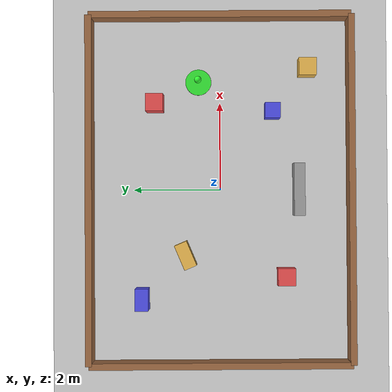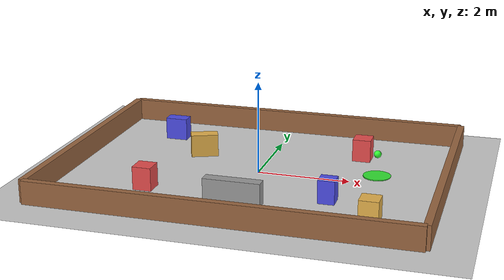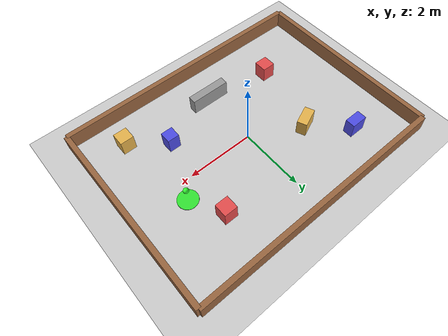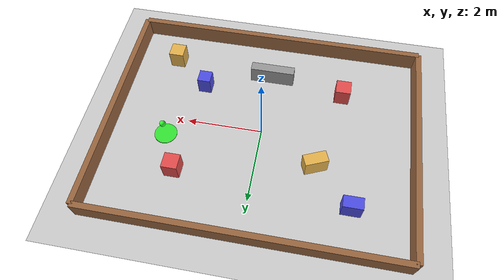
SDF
<?xml version="1.0"?>
<sdf version="1.6">
  <world name="default">

    <include>
      <uri>model://sun</uri>
    </include>
    <include>
      <uri>model://ground_plane</uri>
    </include>

    <!-- Physics tuned for TurtleBot3 -->
    <physics type="ode">
      <real_time_update_rate>1000.0</real_time_update_rate>
      <max_step_size>0.001</max_step_size>
      <real_time_factor>1</real_time_factor>
      <ode>
        <solver>
          <type>quick</type>
          <iters>150</iters>
          <precon_iters>0</precon_iters>
          <sor>1.400000</sor>
          <use_dynamic_moi_rescaling>1</use_dynamic_moi_rescaling>
        </solver>
        <constraints>
          <cfm>0.00001</cfm>
          <erp>0.2</erp>
          <contact_max_correcting_vel>2000.000000</contact_max_correcting_vel>
          <contact_surface_layer>0.01000</contact_surface_layer>
        </constraints>
      </ode>
    </physics>

    <!-- ROS2 Plugins -->
    <plugin name="gazebo_ros_state" filename="libgazebo_ros_state.so">
      <ros>
        <namespace>/</namespace>
      </ros>
    </plugin>
    <plugin name="gazebo_ros_factory" filename="libgazebo_ros_factory.so">
      <ros>
        <namespace>/</namespace>
      </ros>
    </plugin>

    <!-- ========== ROOM WALLS (8m x 6m) ========== -->
    <!-- Larger room gives more exploration space for Q-learning -->

    <model name='wall_north'>
      <pose>0 3 0.25 0 0 0</pose>
      <static>true</static>
      <link name='link'>
        <collision name='collision'>
          <geometry><box><size>8 0.15 0.5</size></box></geometry>
        </collision>
        <visual name='visual'>
          <geometry><box><size>8 0.15 0.5</size></box></geometry>
          <material>
            <ambient>0.5 0.35 0.2 1</ambient>
            <diffuse>0.6 0.4 0.25 1</diffuse>
          </material>
        </visual>
      </link>
    </model>

    <model name='wall_south'>
      <pose>0 -3 0.25 0 0 0</pose>
      <static>true</static>
      <link name='link'>
        <collision name='collision'>
          <geometry><box><size>8 0.15 0.5</size></box></geometry>
        </collision>
        <visual name='visual'>
          <geometry><box><size>8 0.15 0.5</size></box></geometry>
          <material>
            <ambient>0.5 0.35 0.2 1</ambient>
            <diffuse>0.6 0.4 0.25 1</diffuse>
          </material>
        </visual>
      </link>
    </model>

    <model name='wall_east'>
      <pose>4 0 0.25 0 0 1.5708</pose>
      <static>true</static>
      <link name='link'>
        <collision name='collision'>
          <geometry><box><size>6 0.15 0.5</size></box></geometry>
        </collision>
        <visual name='visual'>
          <geometry><box><size>6 0.15 0.5</size></box></geometry>
          <material>
            <ambient>0.5 0.35 0.2 1</ambient>
            <diffuse>0.6 0.4 0.25 1</diffuse>
          </material>
        </visual>
      </link>
    </model>

    <model name='wall_west'>
      <pose>-4 0 0.25 0 0 1.5708</pose>
      <static>true</static>
      <link name='link'>
        <collision name='collision'>
          <geometry><box><size>6 0.15 0.5</size></box></geometry>
        </collision>
        <visual name='visual'>
          <geometry><box><size>6 0.15 0.5</size></box></geometry>
          <material>
            <ambient>0.5 0.35 0.2 1</ambient>
            <diffuse>0.6 0.4 0.25 1</diffuse>
          </material>
        </visual>
      </link>
    </model>

    <!-- ========== OBSTACLES (distributed across room) ========== -->
    <!-- Clear zone around origin: nothing within ~1.2m of (0,0) -->

    <!-- Quadrant 1 (positive x, positive y) -->
    <model name='obstacle_q1_a'>
      <pose>2.0 1.5 0.25 0 0 0</pose>
      <static>true</static>
      <link name='link'>
        <collision name='collision'>
          <geometry><box><size>0.4 0.4 0.5</size></box></geometry>
        </collision>
        <visual name='visual'>
          <geometry><box><size>0.4 0.4 0.5</size></box></geometry>
          <material>
            <ambient>0.8 0.2 0.2 1</ambient>
            <diffuse>0.9 0.3 0.3 1</diffuse>
          </material>
        </visual>
      </link>
    </model>

    <!-- Quadrant 2 (negative x, positive y) -->
    <model name='obstacle_q2_a'>
      <pose>-2.5 1.8 0.25 0 0 0</pose>
      <static>true</static>
      <link name='link'>
        <collision name='collision'>
          <geometry><box><size>0.5 0.3 0.5</size></box></geometry>
        </collision>
        <visual name='visual'>
          <geometry><box><size>0.5 0.3 0.5</size></box></geometry>
          <material>
            <ambient>0.2 0.2 0.8 1</ambient>
            <diffuse>0.3 0.3 0.9 1</diffuse>
          </material>
        </visual>
      </link>
    </model>

    <model name='obstacle_q2_b'>
      <pose>-1.5 0.8 0.25 0 0 0.4</pose>
      <static>true</static>
      <link name='link'>
        <collision name='collision'>
          <geometry><box><size>0.6 0.3 0.5</size></box></geometry>
        </collision>
        <visual name='visual'>
          <geometry><box><size>0.6 0.3 0.5</size></box></geometry>
          <material>
            <ambient>0.8 0.6 0.2 1</ambient>
            <diffuse>0.9 0.7 0.3 1</diffuse>
          </material>
        </visual>
      </link>
    </model>

    <!-- Quadrant 3 (negative x, negative y) -->
    <model name='obstacle_q3_a'>
      <pose>-2.0 -1.5 0.25 0 0 0</pose>
      <static>true</static>
      <link name='link'>
        <collision name='collision'>
          <geometry><box><size>0.4 0.4 0.5</size></box></geometry>
        </collision>
        <visual name='visual'>
          <geometry><box><size>0.4 0.4 0.5</size></box></geometry>
          <material>
            <ambient>0.8 0.2 0.2 1</ambient>
            <diffuse>0.9 0.3 0.3 1</diffuse>
          </material>
        </visual>
      </link>
    </model>

    <!-- Quadrant 4 (positive x, negative y) -->
    <model name='obstacle_q4_a'>
      <pose>1.8 -1.2 0.25 0 0 0</pose>
      <static>true</static>
      <link name='link'>
        <collision name='collision'>
          <geometry><box><size>0.35 0.35 0.5</size></box></geometry>
        </collision>
        <visual name='visual'>
          <geometry><box><size>0.35 0.35 0.5</size></box></geometry>
          <material>
            <ambient>0.2 0.2 0.8 1</ambient>
            <diffuse>0.3 0.3 0.9 1</diffuse>
          </material>
        </visual>
      </link>
    </model>

    <model name='obstacle_q4_b'>
      <pose>2.8 -2.0 0.25 0 0 0</pose>
      <static>true</static>
      <link name='link'>
        <collision name='collision'>
          <geometry><box><size>0.4 0.4 0.5</size></box></geometry>
        </collision>
        <visual name='visual'>
          <geometry><box><size>0.4 0.4 0.5</size></box></geometry>
          <material>
            <ambient>0.8 0.6 0.2 1</ambient>
            <diffuse>0.9 0.7 0.3 1</diffuse>
          </material>
        </visual>
      </link>
    </model>

    <!-- Central corridor obstacle (forces path planning) -->
    <model name='obstacle_corridor'>
      <pose>0.0 -1.8 0.25 0 0 0</pose>
      <static>true</static>
      <link name='link'>
        <collision name='collision'>
          <geometry><box><size>1.2 0.25 0.5</size></box></geometry>
        </collision>
        <visual name='visual'>
          <geometry><box><size>1.2 0.25 0.5</size></box></geometry>
          <material>
            <ambient>0.5 0.5 0.5 1</ambient>
            <diffuse>0.6 0.6 0.6 1</diffuse>
          </material>
        </visual>
      </link>
    </model>

    <!-- ========== TARGET MARKER ========== -->
    <!-- Placed with clear approach paths from multiple directions -->
    <model name='target_mark'>
      <pose>2.5 0.5 0.01 0 0 0</pose>
      <static>true</static>
      <link name='link'>
        <!-- Flat cylinder on ground (no collision - robot can drive over) -->
        <visual name='visual'>
          <geometry><cylinder><radius>0.3</radius><length>0.02</length></cylinder></geometry>
          <material>
            <ambient>0.1 0.8 0.1 1</ambient>
            <diffuse>0.2 0.9 0.2 1</diffuse>
            <emissive>0.05 0.3 0.05 1</emissive>
          </material>
        </visual>
      </link>
    </model>

    <!-- Optional: Visual marker above target for easier spotting -->
    <model name='target_beacon'>
      <pose>2.5 0.5 0.5 0 0 0</pose>
      <static>true</static>
      <link name='link'>
        <visual name='visual'>
          <geometry><sphere><radius>0.08</radius></sphere></geometry>
          <material>
            <ambient>0.1 0.9 0.1 1</ambient>
            <diffuse>0.2 1.0 0.2 1</diffuse>
            <emissive>0.1 0.5 0.1 1</emissive>
          </material>
        </visual>
      </link>
    </model>

  </world>
</sdf>
